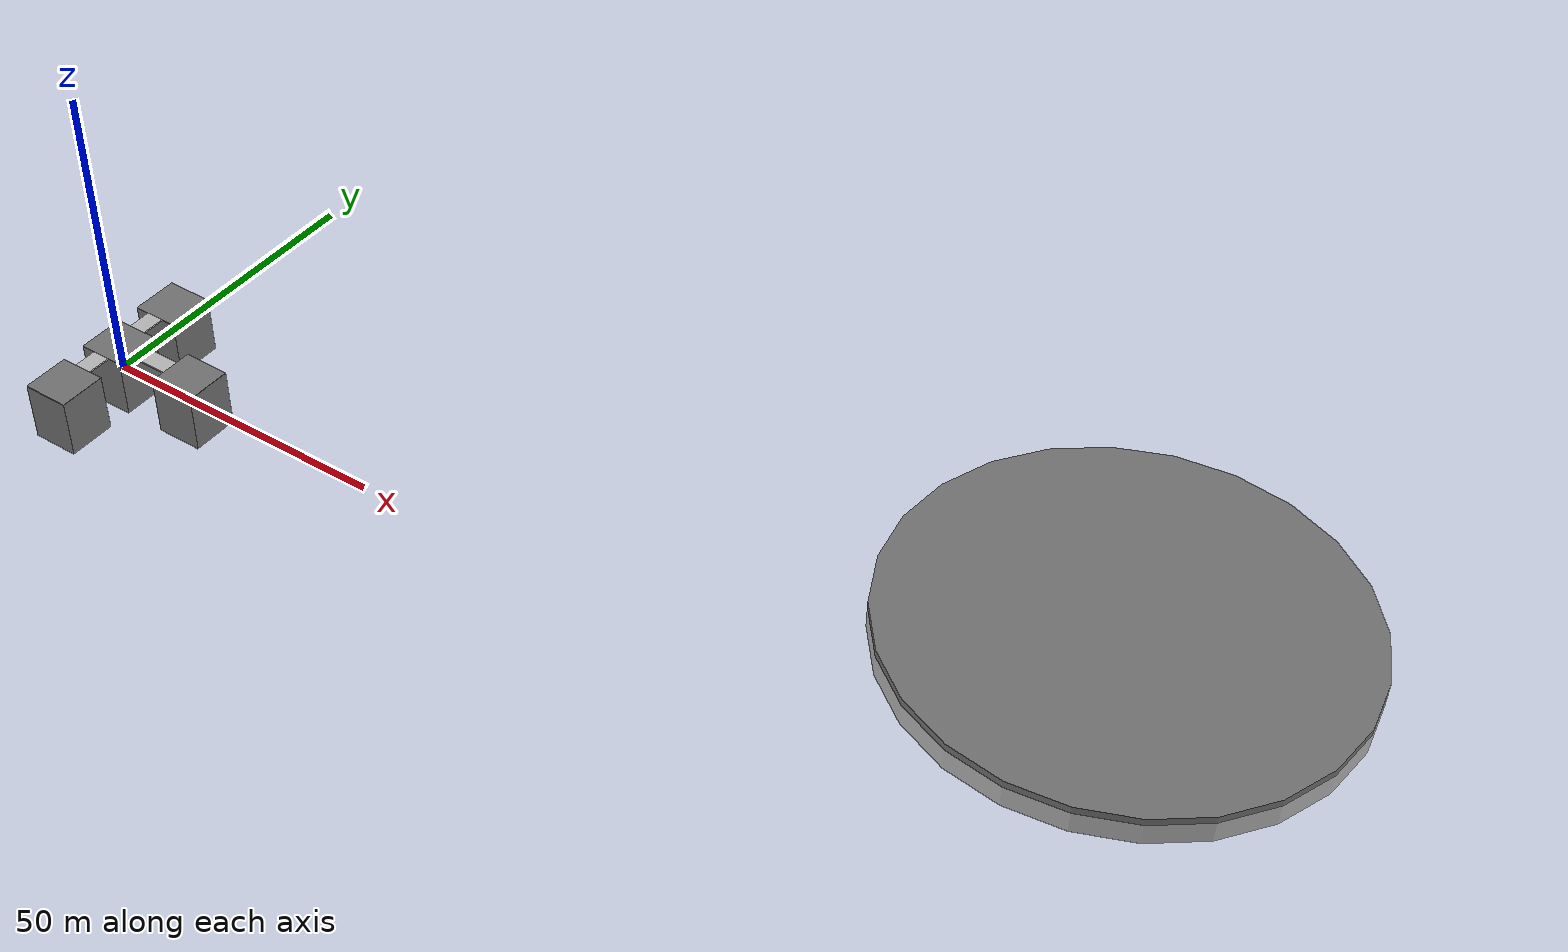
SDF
<sdf version="1.10">
 <world name="ocean_arena">
  <physics name="ode_cpu" type="ode">
   <max_step_size>0.002</max_step_size>
   <real_time_update_rate>500</real_time_update_rate>
   <real_time_factor>1.0</real_time_factor>
   <ode>
    <solver><type>quick</type><iters>50</iters><sor>1.3</sor></solver>
    <constraints><cfm>0.0</cfm><erp>0.2</erp></constraints>
   </ode>
  </physics>
  <plugin name="gz::sim::systems::Physics" filename="gz-sim-physics-system"/>
  <plugin name="gz::sim::systems::UserCommands" filename="gz-sim-user-commands-system"/>
  <plugin name="gz::sim::systems::SceneBroadcaster" filename="gz-sim-scene-broadcaster-system"/>
  <plugin name="gz::sim::systems::Contact" filename="gz-sim-contact-system"/>
  <gravity>0 0 -9.81</gravity>
  <magnetic_field>5.5644999999999998e-06 2.2875799999999999e-05 -4.2388400000000002e-05</magnetic_field>
  <atmosphere type="adiabatic"/>
  <scene><ambient>0.5 0.5 0.5 1</ambient><background>0.7 0.7 0.75 1</background><shadows>false</shadows></scene>
  <model name="central_tower">
   <static>true</static>
   <link name="link">
    <collision name="col"><geometry><box><size>8 8 10</size></box></geometry></collision>
    <visual name="vis">
     <geometry><box><size>8 8 10</size></box></geometry>
     <material>
      <ambient>0.35 0.35 0.35 1</ambient>
      <diffuse>0.45 0.45 0.45 1</diffuse>
      <pbr>
       <metal>
        <albedo_map>model://textures/stone_assets/stone_wall_seamless_1.jpg</albedo_map>
        <roughness>0.9</roughness>
        <metalness>0.0</metalness>
       </metal>
      </pbr>
     </material>
    </visual>
   </link>
  </model>
  <model name="central_arena_floor_model">
   <static>true</static>
   <pose>0 0 5 0 0 0</pose>
   <link name="central_arena_floor_link">
    <collision name="col">
     <geometry><box><size>8 8 0.1</size></box></geometry>
     <surface>
      <friction><ode><mu>0.9</mu><mu2>0.9</mu2><fdir1>1 0 0</fdir1></ode></friction>
      <bounce><restitution_coefficient>0.03</restitution_coefficient><threshold>1e3</threshold></bounce>
      <contact><ode><kp>1e6</kp><kd>1e3</kd><max_vel>1.0</max_vel><min_depth>0.001</min_depth></ode></contact>
     </surface>
    </collision>
    <visual name="vis">
     <geometry><box><size>8 8 0.1</size></box></geometry>
     <material>
      <ambient>0.35 0.35 0.35 1</ambient>
      <diffuse>0.45 0.45 0.45 1</diffuse>
      <pbr>
       <metal>
        <albedo_map>model://textures/grass_assets/green_grass_seamless.jpg</albedo_map>
        <roughness>0.9</roughness>
        <metalness>0.0</metalness>
       </metal>
      </pbr>
     </material>
    </visual>
   </link>
  </model>
  <model name="west_tower">
   <static>true</static>
   <link name="link">
    <pose>0 12 0 0 0 0</pose>
    <collision name="col"><geometry><box><size>8 8 10</size></box></geometry></collision>
    <visual name="vis">
     <geometry><box><size>8 8 10</size></box></geometry>
     <material>
      <ambient>0.35 0.35 0.35 1</ambient>
      <diffuse>0.45 0.45 0.45 1</diffuse>
      <pbr>
       <metal>
        <albedo_map>model://textures/stone_assets/stone_wall_seamless_1.jpg</albedo_map>
        <roughness>0.9</roughness>
        <metalness>0.0</metalness>
       </metal>
      </pbr>
     </material>
    </visual>
   </link>
  </model>
  <model name="west_arena_floor_model">
   <static>true</static>
   <pose>0 12 5 0 0 0</pose>
   <link name="west_arena_floor_link">
    <collision name="col">
     <geometry><box><size>8 8 0.1</size></box></geometry>
     <surface>
      <friction><ode><mu>0.9</mu><mu2>0.9</mu2><fdir1>1 0 0</fdir1></ode></friction>
      <bounce><restitution_coefficient>0.03</restitution_coefficient><threshold>1e3</threshold></bounce>
      <contact><ode><kp>1e6</kp><kd>1e3</kd><max_vel>1.0</max_vel><min_depth>0.001</min_depth></ode></contact>
     </surface>
    </collision>
    <visual name="vis">
     <geometry><box><size>8 8 0.1</size></box></geometry>
     <material>
      <ambient>0.35 0.35 0.35 1</ambient>
      <diffuse>0.45 0.45 0.45 1</diffuse>
      <pbr>
       <metal>
        <albedo_map>model://textures/grass_assets/green_grass_seamless.jpg</albedo_map>
        <roughness>0.9</roughness>
        <metalness>0.0</metalness>
       </metal>
      </pbr>
     </material>
    </visual>
   </link>
  </model>
  <model name="east_tower">
   <static>true</static>
   <link name="link">
    <pose>0 -12 0 0 0 0</pose>
    <collision name="col"><geometry><box><size>8 8 10</size></box></geometry></collision>
    <visual name="vis">
     <geometry><box><size>8 8 10</size></box></geometry>
     <material>
      <ambient>0.35 0.35 0.35 1</ambient>
      <diffuse>0.45 0.45 0.45 1</diffuse>
      <pbr>
       <metal>
        <albedo_map>model://textures/stone_assets/stone_wall_seamless_1.jpg</albedo_map>
        <roughness>0.9</roughness>
        <metalness>0.0</metalness>
       </metal>
      </pbr>
     </material>
    </visual>
   </link>
  </model>
  <model name="east_arena_floor_model">
   <static>true</static>
   <pose>0 -12 5 0 0 0</pose>
   <link name="east_arena_floor_link">
    <collision name="col">
     <geometry><box><size>8 8 0.1</size></box></geometry>
     <surface>
      <friction><ode><mu>0.9</mu><mu2>0.9</mu2><fdir1>1 0 0</fdir1></ode></friction>
      <bounce><restitution_coefficient>0.03</restitution_coefficient><threshold>1e3</threshold></bounce>
      <contact><ode><kp>1e6</kp><kd>1e3</kd><max_vel>1.0</max_vel><min_depth>0.001</min_depth></ode></contact>
     </surface>
    </collision>
    <visual name="vis">
     <geometry><box><size>8 8 0.1</size></box></geometry>
     <material>
      <ambient>0.35 0.35 0.35 1</ambient>
      <diffuse>0.45 0.45 0.45 1</diffuse>
      <pbr>
       <metal>
        <albedo_map>model://textures/grass_assets/green_grass_seamless.jpg</albedo_map>
        <roughness>0.9</roughness>
        <metalness>0.0</metalness>
       </metal>
      </pbr>
     </material>
    </visual>
   </link>
  </model>
  <model name="north_tower">
   <static>true</static>
   <link name="link">
    <pose>15 0 0 0 0 0</pose>
    <collision name="col"><geometry><box><size>8 8 10</size></box></geometry></collision>
    <visual name="vis">
     <geometry><box><size>8 8 10</size></box></geometry>
     <material>
      <ambient>0.35 0.35 0.35 1</ambient>
      <diffuse>0.45 0.45 0.45 1</diffuse>
      <pbr>
       <metal>
        <albedo_map>model://textures/stone_assets/stone_wall_seamless_1.jpg</albedo_map>
        <roughness>0.9</roughness>
        <metalness>0.0</metalness>
       </metal>
      </pbr>
     </material>
    </visual>
   </link>
  </model>
  <model name="north_arena_floor_model">
   <static>true</static>
   <pose>15 0 5 0 0 0</pose>
   <link name="north_arena_floor_link">
    <collision name="col">
     <geometry><box><size>8 8 0.1</size></box></geometry>
     <surface>
      <friction><ode><mu>0.9</mu><mu2>0.9</mu2><fdir1>1 0 0</fdir1></ode></friction>
      <bounce><restitution_coefficient>0.03</restitution_coefficient><threshold>1e3</threshold></bounce>
      <contact><ode><kp>1e6</kp><kd>1e3</kd><max_vel>1.0</max_vel><min_depth>0.001</min_depth></ode></contact>
     </surface>
    </collision>
    <visual name="vis">
     <geometry><box><size>8 8 0.1</size></box></geometry>
     <material>
      <ambient>0.35 0.35 0.35 1</ambient>
      <diffuse>0.45 0.45 0.45 1</diffuse>
      <pbr>
       <metal>
        <albedo_map>model://textures/grass_assets/green_grass_seamless.jpg</albedo_map>
        <roughness>0.9</roughness>
        <metalness>0.0</metalness>
       </metal>
      </pbr>
     </material>
    </visual>
   </link>
  </model>
  <model name="sky_tower">
   <static>true</static>
   <link name="link">
    <pose>170 0 40 0 0 0</pose>
    <collision name="col">
     <geometry><cylinder><radius>30</radius><length>3</length></cylinder></geometry>
    </collision>
    <visual name="vis">
     <geometry><cylinder><radius>30</radius><length>3</length></cylinder></geometry>
     <material>
      <pbr>
       <metal>
        <albedo_map>model://textures/grass_assets/green_grass_seamless.jpg</albedo_map>
        <roughness>0.9</roughness>
        <metalness>0.0</metalness>
       </metal>
      </pbr>
     </material>
    </visual>
   </link>
  </model>
  <model name="sky_tower_floor_model">
   <static>true</static>
   <pose>170 0 42 0 0 0</pose>
   <link name="central_arena_floor_link">
    <collision name="col">
     <geometry><cylinder><radius>30</radius><length>1</length></cylinder></geometry>
     <surface>
      <friction><ode><mu>0.9</mu><mu2>0.9</mu2><fdir1>1 0 0</fdir1></ode></friction>
      <bounce><restitution_coefficient>0.03</restitution_coefficient><threshold>1e3</threshold></bounce>
      <contact><ode><kp>1e6</kp><kd>1e3</kd><max_vel>1.0</max_vel><min_depth>0.001</min_depth></ode></contact>
     </surface>
    </collision>
    <visual name="vis">
     <geometry><cylinder><radius>30</radius><length>1</length></cylinder></geometry>
     <material>
      <ambient>0.35 0.35 0.35 1</ambient>
      <diffuse>0.45 0.45 0.45 1</diffuse>
      <pbr>
       <metal>
        <albedo_map>model://textures/grass_assets/green_grass_seamless.jpg</albedo_map>
        <roughness>0.9</roughness>
        <metalness>0.0</metalness>
       </metal>
      </pbr>
     </material>
    </visual>
   </link>
  </model>
  <model name="north_bridge">
   <static>true</static>
   <link name="link">
    <pose>7.5 0 4.925 0 0 0</pose>
    <collision name="col"><geometry><box><size>7 3 0.25</size></box></geometry></collision>
    <visual name="vis"><geometry><box><size>7 3 0.25</size></box></geometry></visual>
   </link>
  </model>
  <model name="east_bridge">
   <static>true</static>
   <link name="link">
    <pose>0 -6 4.925 0 0 0</pose>
    <collision name="col"><geometry><box><size>3 4 0.25</size></box></geometry></collision>
    <visual name="vis"><geometry><box><size>3 4 0.25</size></box></geometry></visual>
   </link>
  </model>
  <model name="west_bridge">
   <static>true</static>
   <link name="link">
    <pose>0 6 4.925 0 0 0</pose>
    <collision name="col"><geometry><box><size>3 4 0.25</size></box></geometry></collision>
    <visual name="vis"><geometry><box><size>3 4 0.25</size></box></geometry></visual>
   </link>
  </model>
  <light name="sun" type="directional">
   <pose>0 0 10 0 0 0</pose>
   <intensity>1</intensity>
   <direction>-0.5 0.10000000000000001 -0.90000000000000002</direction>
   <diffuse>0.800000012 0.800000012 0.800000012 1</diffuse>
   <specular>0.200000003 0.200000003 0.200000003 1</specular>
   <attenuation>
    <range>1000</range>
    <linear>0.01</linear>
    <constant>0.90000000000000002</constant>
    <quadratic>0.001</quadratic>
   </attenuation>
   <spot><inner_angle>0</inner_angle><outer_angle>0</outer_angle><falloff>0</falloff></spot>
  </light>
 </world>
</sdf>
